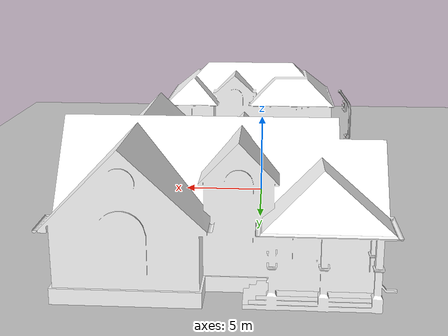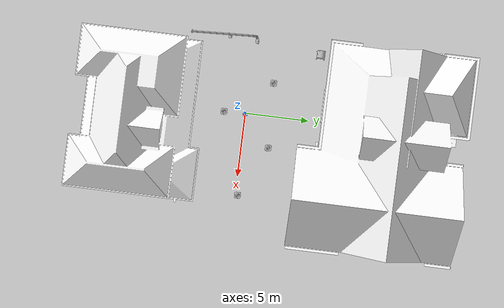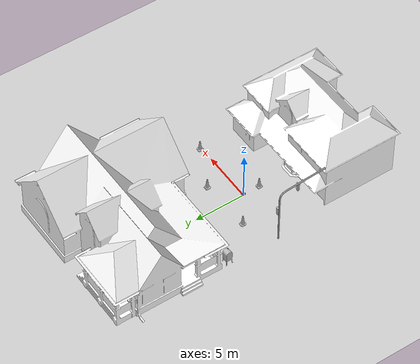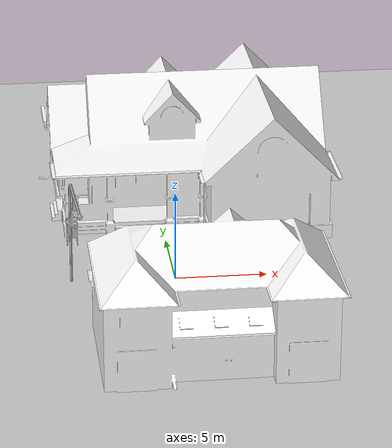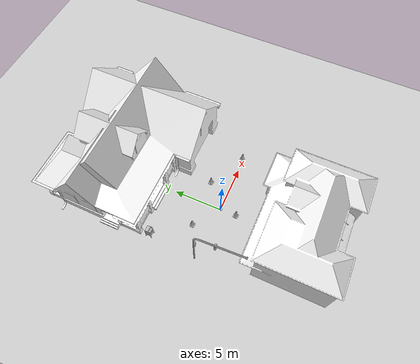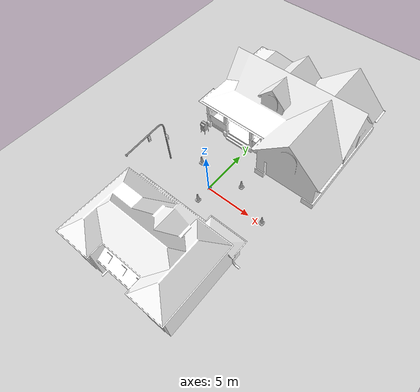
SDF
<sdf version="1.7">
 <world name="default">
  <light name="sun" type="directional">
   <pose>0 0 10 0 -0 0</pose>
   <diffuse>0.8 0.8 0.8 1</diffuse>
   <specular>0.2 0.2 0.2 1</specular>
   <attenuation>
    <range>1000</range>
    <constant>0.9</constant>
    <linear>0.01</linear>
    <quadratic>0.001</quadratic>
   </attenuation>
   <direction>-0.5 0.1 -0.9</direction>
   <spot><inner_angle>0</inner_angle><outer_angle>0</outer_angle><falloff>0</falloff></spot>
  </light>
  <model name="ground_plane">
   <static>1</static>
   <link name="link">
    <collision name="collision">
     <geometry><plane><normal>0 0 1</normal><size>100 100</size></plane></geometry>
     <surface>
      <contact><collide_bitmask>65535</collide_bitmask></contact>
      <friction><ode><mu>100</mu><mu2>50</mu2></ode></friction>
     </surface>
    </collision>
    <visual name="visual">
     <cast_shadows>0</cast_shadows>
     <geometry><plane><normal>0 0 1</normal><size>100 100</size></plane></geometry>
     <material>
      <script><uri>file://media/materials/scripts/gazebo.material</uri><name>Gazebo/Grey</name></script>
     </material>
    </visual>
   </link>
  </model>
  <gravity>0 0 -9.8</gravity>
  <magnetic_field>6e-06 2.3e-05 -4.2e-05</magnetic_field>
  <atmosphere type="adiabatic"/>
  <physics type="ode">
   <max_step_size>0.001</max_step_size>
   <real_time_factor>1</real_time_factor>
   <real_time_update_rate>1000</real_time_update_rate>
  </physics>
  <scene><ambient>0.4 0.4 0.4 1</ambient><background>0.7 0.7 0.7 1</background><shadows>1</shadows></scene>
  <audio><device>default</device></audio>
  <spherical_coordinates>
   <surface_model>EARTH_WGS84</surface_model>
   <latitude_deg>0</latitude_deg>
   <longitude_deg>0</longitude_deg>
   <elevation>0</elevation>
   <heading_deg>0</heading_deg>
  </spherical_coordinates>
  <model name="dif_bot">
   <link name="base_link">
    <inertial>
     <pose>0.065 0 0.0625 0 -0 0</pose>
     <mass>0.6</mass>
     <inertia>
      <ixx>0.00525625</ixx>
      <ixy>0</ixy>
      <ixz>0.0005625</ixz>
      <iyy>0.00593125</iyy>
      <iyz>0</iyz>
      <izz>0.008275</izz>
     </inertia>
    </inertial>
    <collision name="base_link_fixed_joint_lump__chassis_link_collision">
     <pose>0.05 0 0.075 0 -0 0</pose>
     <geometry><box><size>0.3 0.3 0.15</size></box></geometry>
    </collision>
    <collision name="base_link_fixed_joint_lump__caster_wheel_link_collision_1">
     <pose>0.14 0 0 0 -0 0</pose>
     <geometry><sphere><radius>0.05</radius></sphere></geometry>
     <surface><friction><ode><mu>0.001</mu><mu2>0.001</mu2></ode></friction></surface>
    </collision>
    <visual name="base_link_fixed_joint_lump__chassis_link_visual">
     <pose>0.05 0 0.075 0 -0 0</pose>
     <geometry><box><size>0.3 0.3 0.15</size></box></geometry>
     <material>
      <script><name>Gazebo/Blue</name><uri>file://media/materials/scripts/gazebo.material</uri></script>
     </material>
    </visual>
    <visual name="base_link_fixed_joint_lump__caster_wheel_link_visual_1">
     <pose>0.14 0 0 0 -0 0</pose>
     <geometry><sphere><radius>0.05</radius></sphere></geometry>
     <material>
      <script><name>Gazebo/Brown</name><uri>file://media/materials/scripts/gazebo.material</uri></script>
     </material>
    </visual>
   </link>
   <joint name="left_wheel_joint" type="revolute">
    <pose relative_to="base_link">0 0.17 0 1.5708 -0 0</pose>
    <parent>base_link</parent>
    <child>left_wheel_link</child>
    <axis>
     <xyz>0 0 1</xyz>
     <limit><lower>-1e+16</lower><upper>1e+16</upper></limit>
     <dynamics><spring_reference>0</spring_reference><spring_stiffness>0</spring_stiffness></dynamics>
    </axis>
   </joint>
   <link name="left_wheel_link">
    <pose relative_to="left_wheel_joint">0 0 0 0 -0 0</pose>
    <inertial>
     <mass>0.1</mass>
     <inertia>
      <ixx>7.58333e-05</ixx>
      <ixy>0</ixy>
      <ixz>0</ixz>
      <iyy>7.58333e-05</iyy>
      <iyz>0</iyz>
      <izz>0.000125</izz>
     </inertia>
    </inertial>
    <collision name="left_wheel_link_collision">
     <geometry><cylinder><length>0.04</length><radius>0.05</radius></cylinder></geometry>
    </collision>
    <visual name="left_wheel_link_visual">
     <geometry><cylinder><length>0.04</length><radius>0.05</radius></cylinder></geometry>
     <material>
      <script><name>Gazebo/Yellow</name><uri>file://media/materials/scripts/gazebo.material</uri></script>
     </material>
    </visual>
   </link>
   <joint name="right_wheel_joint" type="revolute">
    <pose relative_to="base_link">0 -0.17 0 -1.5708 0 0</pose>
    <parent>base_link</parent>
    <child>right_wheel_link</child>
    <axis>
     <xyz>0 0 -1</xyz>
     <limit><lower>-1e+16</lower><upper>1e+16</upper></limit>
     <dynamics><spring_reference>0</spring_reference><spring_stiffness>0</spring_stiffness></dynamics>
    </axis>
   </joint>
   <link name="right_wheel_link">
    <pose relative_to="right_wheel_joint">0 0 0 0 -0 0</pose>
    <inertial>
     <mass>0.1</mass>
     <inertia>
      <ixx>7.58333e-05</ixx>
      <ixy>0</ixy>
      <ixz>0</ixz>
      <iyy>7.58333e-05</iyy>
      <iyz>0</iyz>
      <izz>0.000125</izz>
     </inertia>
    </inertial>
    <collision name="right_wheel_link_collision">
     <geometry><cylinder><length>0.04</length><radius>0.05</radius></cylinder></geometry>
    </collision>
    <visual name="right_wheel_link_visual">
     <geometry><cylinder><length>0.04</length><radius>0.05</radius></cylinder></geometry>
     <material>
      <script><name>Gazebo/Yellow</name><uri>file://media/materials/scripts/gazebo.material</uri></script>
     </material>
    </visual>
   </link>
   <static>0</static>
   <plugin name="diff_drive" filename="libgazebo_ros_diff_drive.so">
    <left_joint>left_wheel_joint</left_joint>
    <right_joint>right_wheel_joint</right_joint>
    <wheel_separation>0.34</wheel_separation>
    <wheel_diameter>0.1</wheel_diameter>
    <max_wheel_torque>200</max_wheel_torque>
    <max_wheel_acceleration>10.0</max_wheel_acceleration>
    <odometry_frame>odom</odometry_frame>
    <robot_base_frame>base_link</robot_base_frame>
    <publish_odom>1</publish_odom>
    <publish_odom_tf>1</publish_odom_tf>
    <publish_wheel_tf>1</publish_wheel_tf>
   </plugin>
   <pose>0.024214 -0.001549 0.05 0 1.4e-05 -0.001108</pose>
  </model>
  <model name="House 1">
   <static>1</static>
   <link name="link">
    <collision name="collision">
     <geometry><mesh><uri>model://house_1/meshes/house_1.dae</uri><scale>1.5 1.5 1.5</scale></mesh></geometry>
    </collision>
    <visual name="visual">
     <geometry><mesh><uri>model://house_1/meshes/house_1.dae</uri><scale>1.5 1.5 1.5</scale></mesh></geometry>
     <material>
      <script>
       <uri>model://house_1/materials/scripts</uri>
       <uri>model://house_1/materials/textures</uri>
       <name>House_1/Diffuse</name>
      </script>
      <shader type="normal_map_tangent_space"><normal_map>House_1_Normal.png</normal_map></shader>
     </material>
    </visual>
   </link>
   <pose>2.04536 11.1048 0 0 -0 0</pose>
  </model>
  <model name="House 2">
   <static>1</static>
   <link name="link">
    <collision name="collision">
     <geometry><mesh><uri>model://house_2/meshes/house_2.dae</uri><scale>1.5 1.5 1.5</scale></mesh></geometry>
    </collision>
    <visual name="visual">
     <geometry><mesh><uri>model://house_2/meshes/house_2.dae</uri><scale>1.5 1.5 1.5</scale></mesh></geometry>
     <material>
      <script>
       <uri>model://house_2/materials/scripts</uri>
       <uri>model://house_2/materials/textures</uri>
       <uri>model://house_1/materials/textures</uri>
       <name>House_2/Diffuse</name>
      </script>
      <shader type="normal_map_tangent_space">
       <normal_map>model://house_1/materials/textures/House_1_Normal.png</normal_map>
      </shader>
     </material>
    </visual>
   </link>
   <pose>0.053967 -8.77191 0 0 -0 0</pose>
  </model>
  <model name="postbox">
   <static>1</static>
   <link name="link">
    <collision name="collision">
     <geometry><mesh><uri>model://postbox/meshes/postbox.dae</uri></mesh></geometry>
    </collision>
    <visual name="visual"><geometry><mesh><uri>model://postbox/meshes/postbox.dae</uri></mesh></geometry></visual>
   </link>
   <pose>-5.23891 5.31629 0 0 -0 0</pose>
  </model>
  <model name="stop_light_post">
   <static>1</static>
   <link name="link">
    <collision name="post">
     <geometry>
      <mesh><uri>model://stop_light_post/meshes/stop_light_post.obj</uri><scale>0.01 0.01 0.01</scale></mesh>
     </geometry>
    </collision>
    <visual name="post">
     <geometry>
      <mesh><uri>model://stop_light_post/meshes/stop_light_post.obj</uri><scale>0.01 0.01 0.01</scale></mesh>
     </geometry>
    </visual>
   </link>
   <frame name="right_light::__model__" attached_to="right_light::link">
    <pose relative_to="__model__">0 -0.05 4 0 -0 0</pose>
   </frame>
   <static>1</static>
   <link name="right_light::link">
    <collision name="collision">
     <geometry>
      <mesh><uri>model://stop_light/meshes/stop_light.obj</uri><scale>0.01 0.01 0.01</scale></mesh>
     </geometry>
    </collision>
    <visual name="frame">
     <geometry>
      <mesh><uri>model://stop_light/meshes/stop_light.obj</uri><scale>0.01 0.01 0.01</scale></mesh>
     </geometry>
    </visual>
    <visual name="red">
     <pose>-0.001123 -0.082251 -0.147514 0 -0 0</pose>
     <geometry><sphere><radius>0.1012</radius></sphere></geometry>
     <material>
      <script>
       <uri>model://stop_light/materials/scripts/</uri>
       <uri>model://stop_light/materials/textures/</uri>
       <name>StopLight/Light</name>
      </script>
      <ambient>1 0 0 1</ambient>
      <specular>1 0 0 1</specular>
     </material>
    </visual>
    <visual name="yellow">
     <pose>-0.001123 -0.082251 -0.402 0 -0 0</pose>
     <geometry><sphere><radius>0.1012</radius></sphere></geometry>
     <material>
      <script>
       <uri>model://stop_light/materials/scripts/</uri>
       <uri>model://stop_light/materials/textures/</uri>
       <name>StopLight/Light</name>
      </script>
      <ambient>1 1 0 1</ambient>
      <specular>1 1 0 1</specular>
     </material>
    </visual>
    <visual name="green">
     <pose>-0.001123 -0.082251 -0.655 0 -0 0</pose>
     <geometry><sphere><radius>0.1012</radius></sphere></geometry>
     <material>
      <script>
       <uri>model://stop_light/materials/scripts/</uri>
       <uri>model://stop_light/materials/textures/</uri>
       <name>StopLight/Light</name>
      </script>
      <ambient>0 1 0 1</ambient>
      <specular>0 1 0 1</specular>
     </material>
    </visual>
    <pose relative_to="right_light::__model__">0 0 0 0 -0 0</pose>
   </link>
   <frame name="center_light::__model__" attached_to="center_light::link">
    <pose relative_to="__model__">-2 0.04 5.82 0 -0 0</pose>
   </frame>
   <static>1</static>
   <link name="center_light::link">
    <collision name="collision">
     <geometry>
      <mesh><uri>model://stop_light/meshes/stop_light.obj</uri><scale>0.01 0.01 0.01</scale></mesh>
     </geometry>
    </collision>
    <visual name="frame">
     <geometry>
      <mesh><uri>model://stop_light/meshes/stop_light.obj</uri><scale>0.01 0.01 0.01</scale></mesh>
     </geometry>
    </visual>
    <visual name="red">
     <pose>-0.001123 -0.082251 -0.147514 0 -0 0</pose>
     <geometry><sphere><radius>0.1012</radius></sphere></geometry>
     <material>
      <script>
       <uri>model://stop_light/materials/scripts/</uri>
       <uri>model://stop_light/materials/textures/</uri>
       <name>StopLight/Light</name>
      </script>
      <ambient>1 0 0 1</ambient>
      <specular>1 0 0 1</specular>
     </material>
    </visual>
    <visual name="yellow">
     <pose>-0.001123 -0.082251 -0.402 0 -0 0</pose>
     <geometry><sphere><radius>0.1012</radius></sphere></geometry>
     <material>
      <script>
       <uri>model://stop_light/materials/scripts/</uri>
       <uri>model://stop_light/materials/textures/</uri>
       <name>StopLight/Light</name>
      </script>
      <ambient>1 1 0 1</ambient>
      <specular>1 1 0 1</specular>
     </material>
    </visual>
    <visual name="green">
     <pose>-0.001123 -0.082251 -0.655 0 -0 0</pose>
     <geometry><sphere><radius>0.1012</radius></sphere></geometry>
     <material>
      <script>
       <uri>model://stop_light/materials/scripts/</uri>
       <uri>model://stop_light/materials/textures/</uri>
       <name>StopLight/Light</name>
      </script>
      <ambient>0 1 0 1</ambient>
      <specular>0 1 0 1</specular>
     </material>
    </visual>
    <pose relative_to="center_light::__model__">0 0 0 0 -0 0</pose>
   </link>
   <pose>-5.61956 0.310328 0 0 -0 1.61864</pose>
  </model>
  <model name="Construction Cone">
   <link name="link">
    <collision name="collision">
     <geometry>
      <mesh><scale>10 10 10</scale><uri>model://construction_cone/meshes/construction_cone.dae</uri></mesh>
     </geometry>
    </collision>
    <visual name="visual">
     <geometry>
      <mesh><scale>10 10 10</scale><uri>model://construction_cone/meshes/construction_cone.dae</uri></mesh>
     </geometry>
    </visual>
    <inertial>
     <inertia><ixx>1</ixx><ixy>0</ixy><ixz>0</ixz><iyy>1</iyy><iyz>0</iyz><izz>1</izz></inertia>
     <mass>1</mass>
    </inertial>
   </link>
   <pose>0.051271 -1.68983 -0 0 -1e-06 0</pose>
  </model>
  <model name="Construction Cone_0">
   <link name="link">
    <collision name="collision">
     <geometry>
      <mesh><scale>10 10 10</scale><uri>model://construction_cone/meshes/construction_cone.dae</uri></mesh>
     </geometry>
    </collision>
    <visual name="visual">
     <geometry>
      <mesh><scale>10 10 10</scale><uri>model://construction_cone/meshes/construction_cone.dae</uri></mesh>
     </geometry>
    </visual>
    <inertial>
     <inertia><ixx>1</ixx><ixy>0</ixy><ixz>0</ixz><iyy>1</iyy><iyz>0</iyz><izz>1</izz></inertia>
     <mass>1</mass>
    </inertial>
   </link>
   <pose>-2.62385 1.91144 -1e-05 -1e-06 0 0</pose>
  </model>
  <model name="Construction Cone_1">
   <link name="link">
    <collision name="collision">
     <geometry>
      <mesh><scale>10 10 10</scale><uri>model://construction_cone/meshes/construction_cone.dae</uri></mesh>
     </geometry>
    </collision>
    <visual name="visual">
     <geometry>
      <mesh><scale>10 10 10</scale><uri>model://construction_cone/meshes/construction_cone.dae</uri></mesh>
     </geometry>
    </visual>
    <inertial>
     <inertia><ixx>1</ixx><ixy>0</ixy><ixz>0</ixz><iyy>1</iyy><iyz>0</iyz><izz>1</izz></inertia>
     <mass>1</mass>
    </inertial>
   </link>
   <pose>2.48311 2.11948 -0 0 -0 0</pose>
  </model>
  <model name="Construction Cone_2">
   <link name="link">
    <collision name="collision">
     <geometry>
      <mesh><scale>10 10 10</scale><uri>model://construction_cone/meshes/construction_cone.dae</uri></mesh>
     </geometry>
    </collision>
    <visual name="visual">
     <geometry>
      <mesh><scale>10 10 10</scale><uri>model://construction_cone/meshes/construction_cone.dae</uri></mesh>
     </geometry>
    </visual>
    <inertial>
     <inertia><ixx>1</ixx><ixy>0</ixy><ixz>0</ixz><iyy>1</iyy><iyz>0</iyz><izz>1</izz></inertia>
     <mass>1</mass>
    </inertial>
   </link>
   <pose>6.47851 0.17783 -0 0 -1e-06 0</pose>
  </model>
 </world>
</sdf>
